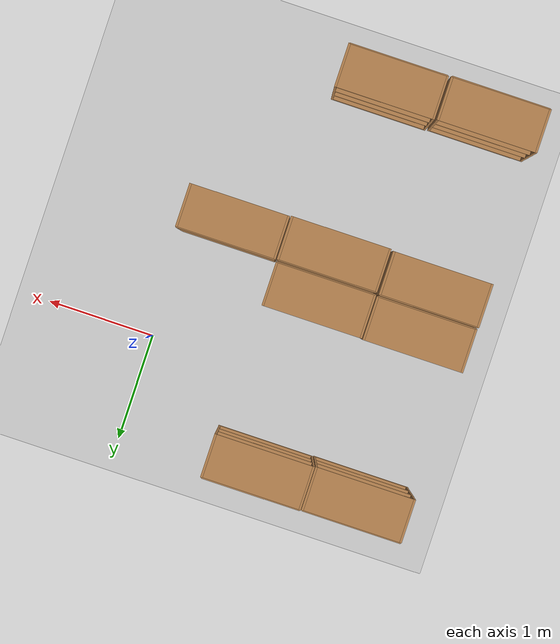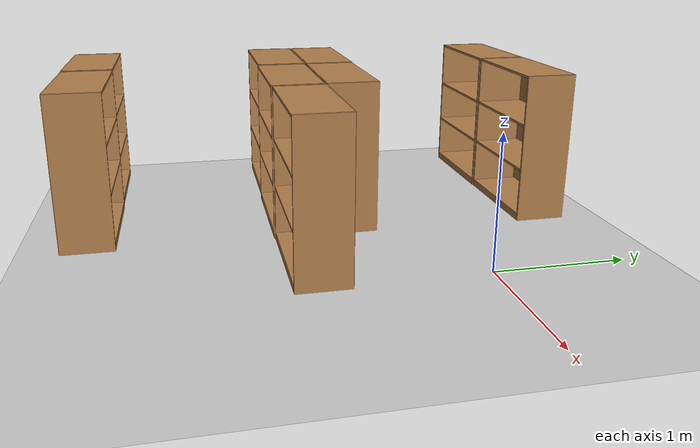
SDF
<sdf version="1.6">
 <world name="default">
  <model name="ground_plane">
   <static>1</static>
   <link name="link">
    <collision name="collision">
     <geometry><plane><normal>0 0 1</normal><size>100 100</size></plane></geometry>
     <surface><friction><ode><mu>100</mu><mu2>50</mu2></ode></friction></surface>
    </collision>
    <visual name="visual">
     <cast_shadows>0</cast_shadows>
     <geometry><plane><normal>0 0 1</normal><size>100 100</size></plane></geometry>
     <material>
      <script><uri>file://media/materials/scripts/gazebo.material</uri><name>Gazebo/Grey</name></script>
     </material>
    </visual>
   </link>
  </model>
  <model name="bookshelf_clone_0">
   <static>1</static>
   <link name="link">
    <inertial><mass>1</mass></inertial>
    <collision name="back">
     <pose>0 0.005 0.6 0 -0 0</pose>
     <geometry><box><size>0.9 0.01 1.2</size></box></geometry>
    </collision>
    <visual name="visual1">
     <pose>0 0.005 0.6 0 -0 0</pose>
     <geometry><box><size>0.9 0.01 1.2</size></box></geometry>
     <material>
      <script><uri>file://media/materials/scripts/gazebo.material</uri><name>Gazebo/Wood</name></script>
     </material>
    </visual>
    <collision name="left_side">
     <pose>0.45 -0.195 0.6 0 -0 0</pose>
     <geometry><box><size>0.02 0.4 1.2</size></box></geometry>
    </collision>
    <visual name="visual2">
     <pose>0.45 -0.195 0.6 0 -0 0</pose>
     <geometry><box><size>0.02 0.4 1.2</size></box></geometry>
     <material>
      <script><uri>file://media/materials/scripts/gazebo.material</uri><name>Gazebo/Wood</name></script>
     </material>
    </visual>
    <collision name="right_side">
     <pose>-0.45 -0.195 0.6 0 -0 0</pose>
     <geometry><box><size>0.02 0.4 1.2</size></box></geometry>
    </collision>
    <visual name="visual3">
     <pose>-0.45 -0.195 0.6 0 -0 0</pose>
     <geometry><box><size>0.02 0.4 1.2</size></box></geometry>
     <material>
      <script><uri>file://media/materials/scripts/gazebo.material</uri><name>Gazebo/Wood</name></script>
     </material>
    </visual>
    <collision name="bottom">
     <pose>0 -0.195 0.03 0 -0 0</pose>
     <geometry><box><size>0.88 0.4 0.06</size></box></geometry>
    </collision>
    <visual name="visual4">
     <pose>0 -0.195 0.03 0 -0 0</pose>
     <geometry><box><size>0.88 0.4 0.06</size></box></geometry>
     <material>
      <script><uri>file://media/materials/scripts/gazebo.material</uri><name>Gazebo/Wood</name></script>
     </material>
    </visual>
    <collision name="top">
     <pose>0 -0.195 1.19 0 -0 0</pose>
     <geometry><box><size>0.88 0.4 0.02</size></box></geometry>
    </collision>
    <visual name="visual5">
     <pose>0 -0.195 1.19 0 -0 0</pose>
     <geometry><box><size>0.88 0.4 0.02</size></box></geometry>
     <material>
      <script><uri>file://media/materials/scripts/gazebo.material</uri><name>Gazebo/Wood</name></script>
     </material>
    </visual>
    <collision name="low_shelf">
     <pose>0 -0.195 0.43 0 -0 0</pose>
     <geometry><box><size>0.88 0.4 0.02</size></box></geometry>
    </collision>
    <visual name="visual6">
     <pose>0 -0.195 0.43 0 -0 0</pose>
     <geometry><box><size>0.88 0.4 0.02</size></box></geometry>
     <material>
      <script><uri>file://media/materials/scripts/gazebo.material</uri><name>Gazebo/Wood</name></script>
     </material>
    </visual>
    <collision name="high_shelf">
     <pose>0 -0.195 0.8 0 -0 0</pose>
     <geometry><box><size>0.88 0.4 0.02</size></box></geometry>
    </collision>
    <visual name="visual7">
     <pose>0 -0.195 0.8 0 -0 0</pose>
     <geometry><box><size>0.88 0.4 0.02</size></box></geometry>
     <material>
      <script><uri>file://media/materials/scripts/gazebo.material</uri><name>Gazebo/Wood</name></script>
     </material>
    </visual>
   </link>
   <pose>-1.30473 0.98568 0 0 -0 0</pose>
  </model>
  <model name="bookshelf_clone_1">
   <static>1</static>
   <link name="link">
    <inertial><mass>1</mass></inertial>
    <collision name="back">
     <pose>0 0.005 0.6 0 -0 0</pose>
     <geometry><box><size>0.9 0.01 1.2</size></box></geometry>
    </collision>
    <visual name="visual1">
     <pose>0 0.005 0.6 0 -0 0</pose>
     <geometry><box><size>0.9 0.01 1.2</size></box></geometry>
     <material>
      <script><uri>file://media/materials/scripts/gazebo.material</uri><name>Gazebo/Wood</name></script>
     </material>
    </visual>
    <collision name="left_side">
     <pose>0.45 -0.195 0.6 0 -0 0</pose>
     <geometry><box><size>0.02 0.4 1.2</size></box></geometry>
    </collision>
    <visual name="visual2">
     <pose>0.45 -0.195 0.6 0 -0 0</pose>
     <geometry><box><size>0.02 0.4 1.2</size></box></geometry>
     <material>
      <script><uri>file://media/materials/scripts/gazebo.material</uri><name>Gazebo/Wood</name></script>
     </material>
    </visual>
    <collision name="right_side">
     <pose>-0.45 -0.195 0.6 0 -0 0</pose>
     <geometry><box><size>0.02 0.4 1.2</size></box></geometry>
    </collision>
    <visual name="visual3">
     <pose>-0.45 -0.195 0.6 0 -0 0</pose>
     <geometry><box><size>0.02 0.4 1.2</size></box></geometry>
     <material>
      <script><uri>file://media/materials/scripts/gazebo.material</uri><name>Gazebo/Wood</name></script>
     </material>
    </visual>
    <collision name="bottom">
     <pose>0 -0.195 0.03 0 -0 0</pose>
     <geometry><box><size>0.88 0.4 0.06</size></box></geometry>
    </collision>
    <visual name="visual4">
     <pose>0 -0.195 0.03 0 -0 0</pose>
     <geometry><box><size>0.88 0.4 0.06</size></box></geometry>
     <material>
      <script><uri>file://media/materials/scripts/gazebo.material</uri><name>Gazebo/Wood</name></script>
     </material>
    </visual>
    <collision name="top">
     <pose>0 -0.195 1.19 0 -0 0</pose>
     <geometry><box><size>0.88 0.4 0.02</size></box></geometry>
    </collision>
    <visual name="visual5">
     <pose>0 -0.195 1.19 0 -0 0</pose>
     <geometry><box><size>0.88 0.4 0.02</size></box></geometry>
     <material>
      <script><uri>file://media/materials/scripts/gazebo.material</uri><name>Gazebo/Wood</name></script>
     </material>
    </visual>
    <collision name="low_shelf">
     <pose>0 -0.195 0.43 0 -0 0</pose>
     <geometry><box><size>0.88 0.4 0.02</size></box></geometry>
    </collision>
    <visual name="visual6">
     <pose>0 -0.195 0.43 0 -0 0</pose>
     <geometry><box><size>0.88 0.4 0.02</size></box></geometry>
     <material>
      <script><uri>file://media/materials/scripts/gazebo.material</uri><name>Gazebo/Wood</name></script>
     </material>
    </visual>
    <collision name="high_shelf">
     <pose>0 -0.195 0.8 0 -0 0</pose>
     <geometry><box><size>0.88 0.4 0.02</size></box></geometry>
    </collision>
    <visual name="visual7">
     <pose>0 -0.195 0.8 0 -0 0</pose>
     <geometry><box><size>0.88 0.4 0.02</size></box></geometry>
     <material>
      <script><uri>file://media/materials/scripts/gazebo.material</uri><name>Gazebo/Wood</name></script>
     </material>
    </visual>
   </link>
   <pose>-2.22731 0.980137 0 0 -0 0</pose>
  </model>
  <model name="bookshelf_clone_2_clone_0">
   <static>1</static>
   <link name="link">
    <inertial><mass>1</mass></inertial>
    <collision name="back">
     <pose>0 0.005 0.6 0 -0 0</pose>
     <geometry><box><size>0.9 0.01 1.2</size></box></geometry>
    </collision>
    <visual name="visual1">
     <pose>0 0.005 0.6 0 -0 0</pose>
     <geometry><box><size>0.9 0.01 1.2</size></box></geometry>
     <material>
      <script><uri>file://media/materials/scripts/gazebo.material</uri><name>Gazebo/Wood</name></script>
     </material>
    </visual>
    <collision name="left_side">
     <pose>0.45 -0.195 0.6 0 -0 0</pose>
     <geometry><box><size>0.02 0.4 1.2</size></box></geometry>
    </collision>
    <visual name="visual2">
     <pose>0.45 -0.195 0.6 0 -0 0</pose>
     <geometry><box><size>0.02 0.4 1.2</size></box></geometry>
     <material>
      <script><uri>file://media/materials/scripts/gazebo.material</uri><name>Gazebo/Wood</name></script>
     </material>
    </visual>
    <collision name="right_side">
     <pose>-0.45 -0.195 0.6 0 -0 0</pose>
     <geometry><box><size>0.02 0.4 1.2</size></box></geometry>
    </collision>
    <visual name="visual3">
     <pose>-0.45 -0.195 0.6 0 -0 0</pose>
     <geometry><box><size>0.02 0.4 1.2</size></box></geometry>
     <material>
      <script><uri>file://media/materials/scripts/gazebo.material</uri><name>Gazebo/Wood</name></script>
     </material>
    </visual>
    <collision name="bottom">
     <pose>0 -0.195 0.03 0 -0 0</pose>
     <geometry><box><size>0.88 0.4 0.06</size></box></geometry>
    </collision>
    <visual name="visual4">
     <pose>0 -0.195 0.03 0 -0 0</pose>
     <geometry><box><size>0.88 0.4 0.06</size></box></geometry>
     <material>
      <script><uri>file://media/materials/scripts/gazebo.material</uri><name>Gazebo/Wood</name></script>
     </material>
    </visual>
    <collision name="top">
     <pose>0 -0.195 1.19 0 -0 0</pose>
     <geometry><box><size>0.88 0.4 0.02</size></box></geometry>
    </collision>
    <visual name="visual5">
     <pose>0 -0.195 1.19 0 -0 0</pose>
     <geometry><box><size>0.88 0.4 0.02</size></box></geometry>
     <material>
      <script><uri>file://media/materials/scripts/gazebo.material</uri><name>Gazebo/Wood</name></script>
     </material>
    </visual>
    <collision name="low_shelf">
     <pose>0 -0.195 0.43 0 -0 0</pose>
     <geometry><box><size>0.88 0.4 0.02</size></box></geometry>
    </collision>
    <visual name="visual6">
     <pose>0 -0.195 0.43 0 -0 0</pose>
     <geometry><box><size>0.88 0.4 0.02</size></box></geometry>
     <material>
      <script><uri>file://media/materials/scripts/gazebo.material</uri><name>Gazebo/Wood</name></script>
     </material>
    </visual>
    <collision name="high_shelf">
     <pose>0 -0.195 0.8 0 -0 0</pose>
     <geometry><box><size>0.88 0.4 0.02</size></box></geometry>
    </collision>
    <visual name="visual7">
     <pose>0 -0.195 0.8 0 -0 0</pose>
     <geometry><box><size>0.88 0.4 0.02</size></box></geometry>
     <material>
      <script><uri>file://media/materials/scripts/gazebo.material</uri><name>Gazebo/Wood</name></script>
     </material>
    </visual>
   </link>
   <pose>-1.33959 -0.991021 0 0 -0 3.1413</pose>
  </model>
  <model name="bookshelf_clone_2_clone_1">
   <static>1</static>
   <link name="link">
    <inertial><mass>1</mass></inertial>
    <collision name="back">
     <pose>0 0.005 0.6 0 -0 0</pose>
     <geometry><box><size>0.9 0.01 1.2</size></box></geometry>
    </collision>
    <visual name="visual1">
     <pose>0 0.005 0.6 0 -0 0</pose>
     <geometry><box><size>0.9 0.01 1.2</size></box></geometry>
     <material>
      <script><uri>file://media/materials/scripts/gazebo.material</uri><name>Gazebo/Wood</name></script>
     </material>
    </visual>
    <collision name="left_side">
     <pose>0.45 -0.195 0.6 0 -0 0</pose>
     <geometry><box><size>0.02 0.4 1.2</size></box></geometry>
    </collision>
    <visual name="visual2">
     <pose>0.45 -0.195 0.6 0 -0 0</pose>
     <geometry><box><size>0.02 0.4 1.2</size></box></geometry>
     <material>
      <script><uri>file://media/materials/scripts/gazebo.material</uri><name>Gazebo/Wood</name></script>
     </material>
    </visual>
    <collision name="right_side">
     <pose>-0.45 -0.195 0.6 0 -0 0</pose>
     <geometry><box><size>0.02 0.4 1.2</size></box></geometry>
    </collision>
    <visual name="visual3">
     <pose>-0.45 -0.195 0.6 0 -0 0</pose>
     <geometry><box><size>0.02 0.4 1.2</size></box></geometry>
     <material>
      <script><uri>file://media/materials/scripts/gazebo.material</uri><name>Gazebo/Wood</name></script>
     </material>
    </visual>
    <collision name="bottom">
     <pose>0 -0.195 0.03 0 -0 0</pose>
     <geometry><box><size>0.88 0.4 0.06</size></box></geometry>
    </collision>
    <visual name="visual4">
     <pose>0 -0.195 0.03 0 -0 0</pose>
     <geometry><box><size>0.88 0.4 0.06</size></box></geometry>
     <material>
      <script><uri>file://media/materials/scripts/gazebo.material</uri><name>Gazebo/Wood</name></script>
     </material>
    </visual>
    <collision name="top">
     <pose>0 -0.195 1.19 0 -0 0</pose>
     <geometry><box><size>0.88 0.4 0.02</size></box></geometry>
    </collision>
    <visual name="visual5">
     <pose>0 -0.195 1.19 0 -0 0</pose>
     <geometry><box><size>0.88 0.4 0.02</size></box></geometry>
     <material>
      <script><uri>file://media/materials/scripts/gazebo.material</uri><name>Gazebo/Wood</name></script>
     </material>
    </visual>
    <collision name="low_shelf">
     <pose>0 -0.195 0.43 0 -0 0</pose>
     <geometry><box><size>0.88 0.4 0.02</size></box></geometry>
    </collision>
    <visual name="visual6">
     <pose>0 -0.195 0.43 0 -0 0</pose>
     <geometry><box><size>0.88 0.4 0.02</size></box></geometry>
     <material>
      <script><uri>file://media/materials/scripts/gazebo.material</uri><name>Gazebo/Wood</name></script>
     </material>
    </visual>
    <collision name="high_shelf">
     <pose>0 -0.195 0.8 0 -0 0</pose>
     <geometry><box><size>0.88 0.4 0.02</size></box></geometry>
    </collision>
    <visual name="visual7">
     <pose>0 -0.195 0.8 0 -0 0</pose>
     <geometry><box><size>0.88 0.4 0.02</size></box></geometry>
     <material>
      <script><uri>file://media/materials/scripts/gazebo.material</uri><name>Gazebo/Wood</name></script>
     </material>
    </visual>
   </link>
   <pose>-2.26647 -0.984494 0 0 -0 3.1413</pose>
  </model>
  <model name="bookshelf_clone_1_clone_0">
   <static>1</static>
   <link name="link">
    <inertial><mass>1</mass></inertial>
    <collision name="back">
     <pose>0 0.005 0.6 0 -0 0</pose>
     <geometry><box><size>0.9 0.01 1.2</size></box></geometry>
    </collision>
    <visual name="visual1">
     <pose>0 0.005 0.6 0 -0 0</pose>
     <geometry><box><size>0.9 0.01 1.2</size></box></geometry>
     <material>
      <script><uri>file://media/materials/scripts/gazebo.material</uri><name>Gazebo/Wood</name></script>
     </material>
    </visual>
    <collision name="left_side">
     <pose>0.45 -0.195 0.6 0 -0 0</pose>
     <geometry><box><size>0.02 0.4 1.2</size></box></geometry>
    </collision>
    <visual name="visual2">
     <pose>0.45 -0.195 0.6 0 -0 0</pose>
     <geometry><box><size>0.02 0.4 1.2</size></box></geometry>
     <material>
      <script><uri>file://media/materials/scripts/gazebo.material</uri><name>Gazebo/Wood</name></script>
     </material>
    </visual>
    <collision name="right_side">
     <pose>-0.45 -0.195 0.6 0 -0 0</pose>
     <geometry><box><size>0.02 0.4 1.2</size></box></geometry>
    </collision>
    <visual name="visual3">
     <pose>-0.45 -0.195 0.6 0 -0 0</pose>
     <geometry><box><size>0.02 0.4 1.2</size></box></geometry>
     <material>
      <script><uri>file://media/materials/scripts/gazebo.material</uri><name>Gazebo/Wood</name></script>
     </material>
    </visual>
    <collision name="bottom">
     <pose>0 -0.195 0.03 0 -0 0</pose>
     <geometry><box><size>0.88 0.4 0.06</size></box></geometry>
    </collision>
    <visual name="visual4">
     <pose>0 -0.195 0.03 0 -0 0</pose>
     <geometry><box><size>0.88 0.4 0.06</size></box></geometry>
     <material>
      <script><uri>file://media/materials/scripts/gazebo.material</uri><name>Gazebo/Wood</name></script>
     </material>
    </visual>
    <collision name="top">
     <pose>0 -0.195 1.19 0 -0 0</pose>
     <geometry><box><size>0.88 0.4 0.02</size></box></geometry>
    </collision>
    <visual name="visual5">
     <pose>0 -0.195 1.19 0 -0 0</pose>
     <geometry><box><size>0.88 0.4 0.02</size></box></geometry>
     <material>
      <script><uri>file://media/materials/scripts/gazebo.material</uri><name>Gazebo/Wood</name></script>
     </material>
    </visual>
    <collision name="low_shelf">
     <pose>0 -0.195 0.43 0 -0 0</pose>
     <geometry><box><size>0.88 0.4 0.02</size></box></geometry>
    </collision>
    <visual name="visual6">
     <pose>0 -0.195 0.43 0 -0 0</pose>
     <geometry><box><size>0.88 0.4 0.02</size></box></geometry>
     <material>
      <script><uri>file://media/materials/scripts/gazebo.material</uri><name>Gazebo/Wood</name></script>
     </material>
    </visual>
    <collision name="high_shelf">
     <pose>0 -0.195 0.8 0 -0 0</pose>
     <geometry><box><size>0.88 0.4 0.02</size></box></geometry>
    </collision>
    <visual name="visual7">
     <pose>0 -0.195 0.8 0 -0 0</pose>
     <geometry><box><size>0.88 0.4 0.02</size></box></geometry>
     <material>
      <script><uri>file://media/materials/scripts/gazebo.material</uri><name>Gazebo/Wood</name></script>
     </material>
    </visual>
   </link>
   <pose>-0.410129 -1.01303 0 0 -0 0</pose>
  </model>
  <model name="bookshelf_clone_1_clone_1">
   <static>1</static>
   <link name="link">
    <inertial><mass>1</mass></inertial>
    <collision name="back">
     <pose>0 0.005 0.6 0 -0 0</pose>
     <geometry><box><size>0.9 0.01 1.2</size></box></geometry>
    </collision>
    <visual name="visual1">
     <pose>0 0.005 0.6 0 -0 0</pose>
     <geometry><box><size>0.9 0.01 1.2</size></box></geometry>
     <material>
      <script><uri>file://media/materials/scripts/gazebo.material</uri><name>Gazebo/Wood</name></script>
     </material>
    </visual>
    <collision name="left_side">
     <pose>0.45 -0.195 0.6 0 -0 0</pose>
     <geometry><box><size>0.02 0.4 1.2</size></box></geometry>
    </collision>
    <visual name="visual2">
     <pose>0.45 -0.195 0.6 0 -0 0</pose>
     <geometry><box><size>0.02 0.4 1.2</size></box></geometry>
     <material>
      <script><uri>file://media/materials/scripts/gazebo.material</uri><name>Gazebo/Wood</name></script>
     </material>
    </visual>
    <collision name="right_side">
     <pose>-0.45 -0.195 0.6 0 -0 0</pose>
     <geometry><box><size>0.02 0.4 1.2</size></box></geometry>
    </collision>
    <visual name="visual3">
     <pose>-0.45 -0.195 0.6 0 -0 0</pose>
     <geometry><box><size>0.02 0.4 1.2</size></box></geometry>
     <material>
      <script><uri>file://media/materials/scripts/gazebo.material</uri><name>Gazebo/Wood</name></script>
     </material>
    </visual>
    <collision name="bottom">
     <pose>0 -0.195 0.03 0 -0 0</pose>
     <geometry><box><size>0.88 0.4 0.06</size></box></geometry>
    </collision>
    <visual name="visual4">
     <pose>0 -0.195 0.03 0 -0 0</pose>
     <geometry><box><size>0.88 0.4 0.06</size></box></geometry>
     <material>
      <script><uri>file://media/materials/scripts/gazebo.material</uri><name>Gazebo/Wood</name></script>
     </material>
    </visual>
    <collision name="top">
     <pose>0 -0.195 1.19 0 -0 0</pose>
     <geometry><box><size>0.88 0.4 0.02</size></box></geometry>
    </collision>
    <visual name="visual5">
     <pose>0 -0.195 1.19 0 -0 0</pose>
     <geometry><box><size>0.88 0.4 0.02</size></box></geometry>
     <material>
      <script><uri>file://media/materials/scripts/gazebo.material</uri><name>Gazebo/Wood</name></script>
     </material>
    </visual>
    <collision name="low_shelf">
     <pose>0 -0.195 0.43 0 -0 0</pose>
     <geometry><box><size>0.88 0.4 0.02</size></box></geometry>
    </collision>
    <visual name="visual6">
     <pose>0 -0.195 0.43 0 -0 0</pose>
     <geometry><box><size>0.88 0.4 0.02</size></box></geometry>
     <material>
      <script><uri>file://media/materials/scripts/gazebo.material</uri><name>Gazebo/Wood</name></script>
     </material>
    </visual>
    <collision name="high_shelf">
     <pose>0 -0.195 0.8 0 -0 0</pose>
     <geometry><box><size>0.88 0.4 0.02</size></box></geometry>
    </collision>
    <visual name="visual7">
     <pose>0 -0.195 0.8 0 -0 0</pose>
     <geometry><box><size>0.88 0.4 0.02</size></box></geometry>
     <material>
      <script><uri>file://media/materials/scripts/gazebo.material</uri><name>Gazebo/Wood</name></script>
     </material>
    </visual>
   </link>
   <pose>-1.33903 -1.02073 0 0 -0 0</pose>
  </model>
  <model name="bookshelf_clone_1_clone_2">
   <static>1</static>
   <link name="link">
    <inertial><mass>1</mass></inertial>
    <collision name="back">
     <pose>0 0.005 0.6 0 -0 0</pose>
     <geometry><box><size>0.9 0.01 1.2</size></box></geometry>
    </collision>
    <visual name="visual1">
     <pose>0 0.005 0.6 0 -0 0</pose>
     <geometry><box><size>0.9 0.01 1.2</size></box></geometry>
     <material>
      <script><uri>file://media/materials/scripts/gazebo.material</uri><name>Gazebo/Wood</name></script>
     </material>
    </visual>
    <collision name="left_side">
     <pose>0.45 -0.195 0.6 0 -0 0</pose>
     <geometry><box><size>0.02 0.4 1.2</size></box></geometry>
    </collision>
    <visual name="visual2">
     <pose>0.45 -0.195 0.6 0 -0 0</pose>
     <geometry><box><size>0.02 0.4 1.2</size></box></geometry>
     <material>
      <script><uri>file://media/materials/scripts/gazebo.material</uri><name>Gazebo/Wood</name></script>
     </material>
    </visual>
    <collision name="right_side">
     <pose>-0.45 -0.195 0.6 0 -0 0</pose>
     <geometry><box><size>0.02 0.4 1.2</size></box></geometry>
    </collision>
    <visual name="visual3">
     <pose>-0.45 -0.195 0.6 0 -0 0</pose>
     <geometry><box><size>0.02 0.4 1.2</size></box></geometry>
     <material>
      <script><uri>file://media/materials/scripts/gazebo.material</uri><name>Gazebo/Wood</name></script>
     </material>
    </visual>
    <collision name="bottom">
     <pose>0 -0.195 0.03 0 -0 0</pose>
     <geometry><box><size>0.88 0.4 0.06</size></box></geometry>
    </collision>
    <visual name="visual4">
     <pose>0 -0.195 0.03 0 -0 0</pose>
     <geometry><box><size>0.88 0.4 0.06</size></box></geometry>
     <material>
      <script><uri>file://media/materials/scripts/gazebo.material</uri><name>Gazebo/Wood</name></script>
     </material>
    </visual>
    <collision name="top">
     <pose>0 -0.195 1.19 0 -0 0</pose>
     <geometry><box><size>0.88 0.4 0.02</size></box></geometry>
    </collision>
    <visual name="visual5">
     <pose>0 -0.195 1.19 0 -0 0</pose>
     <geometry><box><size>0.88 0.4 0.02</size></box></geometry>
     <material>
      <script><uri>file://media/materials/scripts/gazebo.material</uri><name>Gazebo/Wood</name></script>
     </material>
    </visual>
    <collision name="low_shelf">
     <pose>0 -0.195 0.43 0 -0 0</pose>
     <geometry><box><size>0.88 0.4 0.02</size></box></geometry>
    </collision>
    <visual name="visual6">
     <pose>0 -0.195 0.43 0 -0 0</pose>
     <geometry><box><size>0.88 0.4 0.02</size></box></geometry>
     <material>
      <script><uri>file://media/materials/scripts/gazebo.material</uri><name>Gazebo/Wood</name></script>
     </material>
    </visual>
    <collision name="high_shelf">
     <pose>0 -0.195 0.8 0 -0 0</pose>
     <geometry><box><size>0.88 0.4 0.02</size></box></geometry>
    </collision>
    <visual name="visual7">
     <pose>0 -0.195 0.8 0 -0 0</pose>
     <geometry><box><size>0.88 0.4 0.02</size></box></geometry>
     <material>
      <script><uri>file://media/materials/scripts/gazebo.material</uri><name>Gazebo/Wood</name></script>
     </material>
    </visual>
   </link>
   <pose>-2.27666 -1.00981 0 0 -0 0</pose>
  </model>
  <model name="bookshelf_clone_2_clone_4">
   <static>1</static>
   <link name="link">
    <inertial><mass>1</mass></inertial>
    <collision name="back">
     <pose>0 0.005 0.6 0 -0 0</pose>
     <geometry><box><size>0.9 0.01 1.2</size></box></geometry>
    </collision>
    <visual name="visual1">
     <pose>0 0.005 0.6 0 -0 0</pose>
     <geometry><box><size>0.9 0.01 1.2</size></box></geometry>
     <material>
      <script><uri>file://media/materials/scripts/gazebo.material</uri><name>Gazebo/Wood</name></script>
     </material>
    </visual>
    <collision name="left_side">
     <pose>0.45 -0.195 0.6 0 -0 0</pose>
     <geometry><box><size>0.02 0.4 1.2</size></box></geometry>
    </collision>
    <visual name="visual2">
     <pose>0.45 -0.195 0.6 0 -0 0</pose>
     <geometry><box><size>0.02 0.4 1.2</size></box></geometry>
     <material>
      <script><uri>file://media/materials/scripts/gazebo.material</uri><name>Gazebo/Wood</name></script>
     </material>
    </visual>
    <collision name="right_side">
     <pose>-0.45 -0.195 0.6 0 -0 0</pose>
     <geometry><box><size>0.02 0.4 1.2</size></box></geometry>
    </collision>
    <visual name="visual3">
     <pose>-0.45 -0.195 0.6 0 -0 0</pose>
     <geometry><box><size>0.02 0.4 1.2</size></box></geometry>
     <material>
      <script><uri>file://media/materials/scripts/gazebo.material</uri><name>Gazebo/Wood</name></script>
     </material>
    </visual>
    <collision name="bottom">
     <pose>0 -0.195 0.03 0 -0 0</pose>
     <geometry><box><size>0.88 0.4 0.06</size></box></geometry>
    </collision>
    <visual name="visual4">
     <pose>0 -0.195 0.03 0 -0 0</pose>
     <geometry><box><size>0.88 0.4 0.06</size></box></geometry>
     <material>
      <script><uri>file://media/materials/scripts/gazebo.material</uri><name>Gazebo/Wood</name></script>
     </material>
    </visual>
    <collision name="top">
     <pose>0 -0.195 1.19 0 -0 0</pose>
     <geometry><box><size>0.88 0.4 0.02</size></box></geometry>
    </collision>
    <visual name="visual5">
     <pose>0 -0.195 1.19 0 -0 0</pose>
     <geometry><box><size>0.88 0.4 0.02</size></box></geometry>
     <material>
      <script><uri>file://media/materials/scripts/gazebo.material</uri><name>Gazebo/Wood</name></script>
     </material>
    </visual>
    <collision name="low_shelf">
     <pose>0 -0.195 0.43 0 -0 0</pose>
     <geometry><box><size>0.88 0.4 0.02</size></box></geometry>
    </collision>
    <visual name="visual6">
     <pose>0 -0.195 0.43 0 -0 0</pose>
     <geometry><box><size>0.88 0.4 0.02</size></box></geometry>
     <material>
      <script><uri>file://media/materials/scripts/gazebo.material</uri><name>Gazebo/Wood</name></script>
     </material>
    </visual>
    <collision name="high_shelf">
     <pose>0 -0.195 0.8 0 -0 0</pose>
     <geometry><box><size>0.88 0.4 0.02</size></box></geometry>
    </collision>
    <visual name="visual7">
     <pose>0 -0.195 0.8 0 -0 0</pose>
     <geometry><box><size>0.88 0.4 0.02</size></box></geometry>
     <material>
      <script><uri>file://media/materials/scripts/gazebo.material</uri><name>Gazebo/Wood</name></script>
     </material>
    </visual>
   </link>
   <pose>-1.3387 -2.99426 0 0 -0 3.1413</pose>
  </model>
  <model name="bookshelf_clone_2_clone_5">
   <static>1</static>
   <link name="link">
    <inertial><mass>1</mass></inertial>
    <collision name="back">
     <pose>0 0.005 0.6 0 -0 0</pose>
     <geometry><box><size>0.9 0.01 1.2</size></box></geometry>
    </collision>
    <visual name="visual1">
     <pose>0 0.005 0.6 0 -0 0</pose>
     <geometry><box><size>0.9 0.01 1.2</size></box></geometry>
     <material>
      <script><uri>file://media/materials/scripts/gazebo.material</uri><name>Gazebo/Wood</name></script>
     </material>
    </visual>
    <collision name="left_side">
     <pose>0.45 -0.195 0.6 0 -0 0</pose>
     <geometry><box><size>0.02 0.4 1.2</size></box></geometry>
    </collision>
    <visual name="visual2">
     <pose>0.45 -0.195 0.6 0 -0 0</pose>
     <geometry><box><size>0.02 0.4 1.2</size></box></geometry>
     <material>
      <script><uri>file://media/materials/scripts/gazebo.material</uri><name>Gazebo/Wood</name></script>
     </material>
    </visual>
    <collision name="right_side">
     <pose>-0.45 -0.195 0.6 0 -0 0</pose>
     <geometry><box><size>0.02 0.4 1.2</size></box></geometry>
    </collision>
    <visual name="visual3">
     <pose>-0.45 -0.195 0.6 0 -0 0</pose>
     <geometry><box><size>0.02 0.4 1.2</size></box></geometry>
     <material>
      <script><uri>file://media/materials/scripts/gazebo.material</uri><name>Gazebo/Wood</name></script>
     </material>
    </visual>
    <collision name="bottom">
     <pose>0 -0.195 0.03 0 -0 0</pose>
     <geometry><box><size>0.88 0.4 0.06</size></box></geometry>
    </collision>
    <visual name="visual4">
     <pose>0 -0.195 0.03 0 -0 0</pose>
     <geometry><box><size>0.88 0.4 0.06</size></box></geometry>
     <material>
      <script><uri>file://media/materials/scripts/gazebo.material</uri><name>Gazebo/Wood</name></script>
     </material>
    </visual>
    <collision name="top">
     <pose>0 -0.195 1.19 0 -0 0</pose>
     <geometry><box><size>0.88 0.4 0.02</size></box></geometry>
    </collision>
    <visual name="visual5">
     <pose>0 -0.195 1.19 0 -0 0</pose>
     <geometry><box><size>0.88 0.4 0.02</size></box></geometry>
     <material>
      <script><uri>file://media/materials/scripts/gazebo.material</uri><name>Gazebo/Wood</name></script>
     </material>
    </visual>
    <collision name="low_shelf">
     <pose>0 -0.195 0.43 0 -0 0</pose>
     <geometry><box><size>0.88 0.4 0.02</size></box></geometry>
    </collision>
    <visual name="visual6">
     <pose>0 -0.195 0.43 0 -0 0</pose>
     <geometry><box><size>0.88 0.4 0.02</size></box></geometry>
     <material>
      <script><uri>file://media/materials/scripts/gazebo.material</uri><name>Gazebo/Wood</name></script>
     </material>
    </visual>
    <collision name="high_shelf">
     <pose>0 -0.195 0.8 0 -0 0</pose>
     <geometry><box><size>0.88 0.4 0.02</size></box></geometry>
    </collision>
    <visual name="visual7">
     <pose>0 -0.195 0.8 0 -0 0</pose>
     <geometry><box><size>0.88 0.4 0.02</size></box></geometry>
     <material>
      <script><uri>file://media/materials/scripts/gazebo.material</uri><name>Gazebo/Wood</name></script>
     </material>
    </visual>
   </link>
   <pose>-2.2764 -3.00115 0 0 -0 3.1413</pose>
  </model>
 </world>
</sdf>
